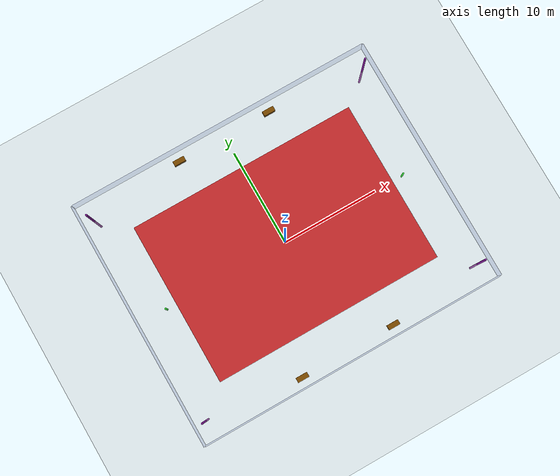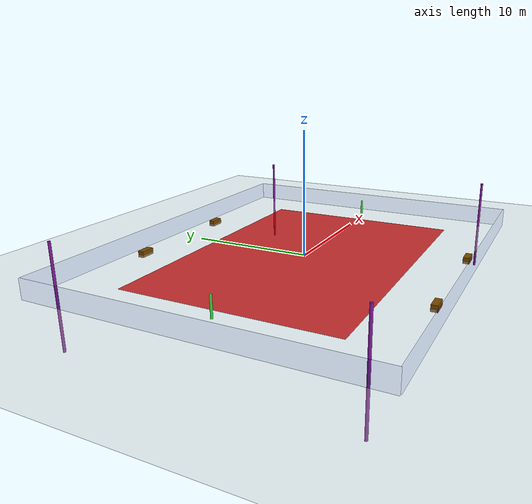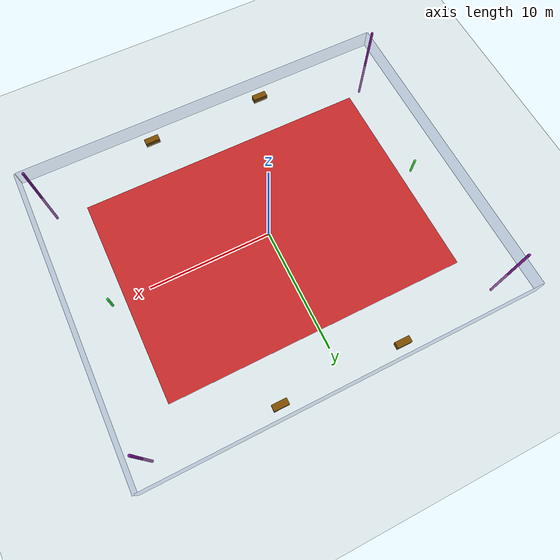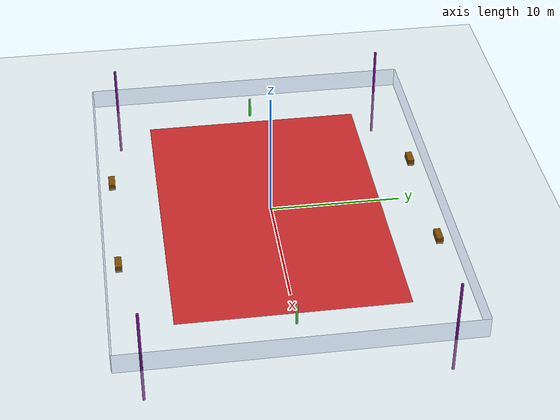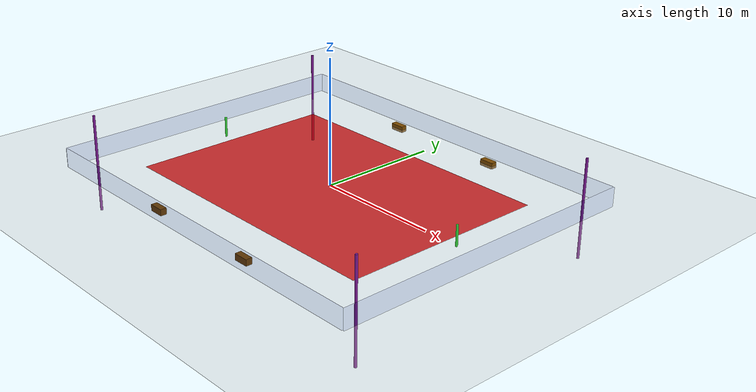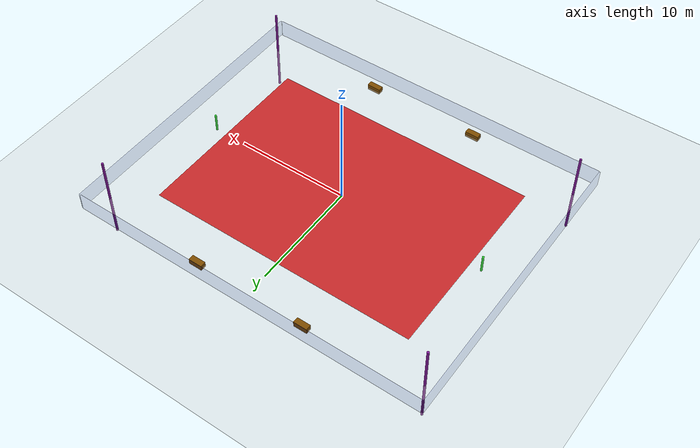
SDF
<sdf version="1.6">
 <world name="default">
  <light name="sun" type="directional">
   <pose>0 0 10 0 -0 0</pose>
   <diffuse>0.8 0.8 0.8 1</diffuse>
   <specular>0.1 0.1 0.1 1</specular>
   <attenuation>
    <range>1000</range>
    <constant>0.9</constant>
    <linear>0.01</linear>
    <quadratic>0.001</quadratic>
   </attenuation>
   <direction>-0.5 0.5 -1</direction>
  </light>
  <model name="ground_plane">
   <static>1</static>
   <link name="link">
    <collision name="collision">
     <geometry><plane><normal>0 0 1</normal><size>100 100</size></plane></geometry>
     <surface><friction><ode><mu>100</mu><mu2>50</mu2></ode></friction></surface>
    </collision>
    <visual name="visual">
     <cast_shadows>0</cast_shadows>
     <geometry><plane><normal>0 0 1</normal><size>100 100</size></plane></geometry>
     <material>
      <script><uri>file://media/materials/scripts/gazebo.material</uri><name>Gazebo/Grey</name></script>
     </material>
    </visual>
   </link>
  </model>
  <gravity>0 0 -9.8</gravity>
  <magnetic_field>6e-06 2.3e-05 -4.2e-05</magnetic_field>
  <atmosphere type="adiabatic"/>
  <physics name="default_physics" default="0" type="ode">
   <max_step_size>0.001</max_step_size>
   <real_time_factor>1</real_time_factor>
   <real_time_update_rate>1000</real_time_update_rate>
  </physics>
  <scene><ambient>0.4 0.4 0.4 1</ambient><background>0.7 0.7 0.7 1</background><shadows>1</shadows></scene>
  <spherical_coordinates>
   <surface_model>EARTH_WGS84</surface_model>
   <latitude_deg>0</latitude_deg>
   <longitude_deg>0</longitude_deg>
   <elevation>0</elevation>
   <heading_deg>0</heading_deg>
  </spherical_coordinates>
  <model name="pole">
   <link name="link">
    <inertial>
     <mass>1</mass>
     <inertia><ixx>0.145833</ixx><ixy>0</ixy><ixz>0</ixz><iyy>0.145833</iyy><iyz>0</iyz><izz>0.125</izz></inertia>
    </inertial>
    <visual name="visual">
     <geometry><cylinder><radius>0.1</radius><length>8</length></cylinder></geometry>
     <material>
      <script><name>Gazebo/Grey</name><uri>file://media/materials/scripts/gazebo.material</uri></script>
      <ambient>0.5 0.1 0.6 1</ambient>
      <diffuse>0.7 0.7 0.7 1</diffuse>
      <specular>0.01 0.01 0.01 1</specular>
      <emissive>0 0 0 1</emissive>
      <shader type="vertex"><normal_map>__default__</normal_map></shader>
     </material>
    </visual>
    <collision name="collision">
     <geometry><cylinder><radius>0.1</radius><length>8</length></cylinder></geometry>
     <surface>
      <friction>
       <ode><mu>1</mu><mu2>1</mu2><fdir1>0 0 0</fdir1><slip1>0</slip1><slip2>0</slip2></ode>
       <torsional>
        <coefficient>1</coefficient>
        <patch_radius>0</patch_radius>
        <surface_radius>0</surface_radius>
        <use_patch_radius>1</use_patch_radius>
        <ode><slip>0</slip></ode>
       </torsional>
      </friction>
      <bounce><restitution_coefficient>0</restitution_coefficient><threshold>1e+06</threshold></bounce>
      <contact>
       <collide_without_contact>0</collide_without_contact>
       <collide_without_contact_bitmask>1</collide_without_contact_bitmask>
       <collide_bitmask>1</collide_bitmask>
       <ode>
        <soft_cfm>0</soft_cfm>
        <soft_erp>0.2</soft_erp>
        <kp>1e+13</kp>
        <kd>1</kd>
        <max_vel>0.01</max_vel>
        <min_depth>0</min_depth>
       </ode>
       <bullet>
        <split_impulse>1</split_impulse>
        <split_impulse_penetration_threshold>-0.01</split_impulse_penetration_threshold>
        <soft_cfm>0</soft_cfm>
        <soft_erp>0.2</soft_erp>
        <kp>1e+13</kp>
        <kd>1</kd>
       </bullet>
      </contact>
     </surface>
    </collision>
   </link>
   <static>1</static>
   <pose>-15 -11 0 0 -0 0</pose>
  </model>
  <model name="pole_0">
   <link name="link">
    <inertial>
     <mass>1</mass>
     <inertia><ixx>0.145833</ixx><ixy>0</ixy><ixz>0</ixz><iyy>0.145833</iyy><iyz>0</iyz><izz>0.125</izz></inertia>
    </inertial>
    <visual name="visual">
     <geometry><cylinder><radius>0.1</radius><length>8</length></cylinder></geometry>
     <material>
      <script><name>Gazebo/Grey</name><uri>file://media/materials/scripts/gazebo.material</uri></script>
      <ambient>0.5 0.1 0.6 1</ambient>
      <diffuse>0.7 0.7 0.7 1</diffuse>
      <specular>0.01 0.01 0.01 1</specular>
      <emissive>0 0 0 1</emissive>
      <shader type="vertex"><normal_map>__default__</normal_map></shader>
     </material>
    </visual>
    <collision name="collision">
     <geometry><cylinder><radius>0.1</radius><length>8</length></cylinder></geometry>
     <surface>
      <friction>
       <ode><mu>1</mu><mu2>1</mu2><fdir1>0 0 0</fdir1><slip1>0</slip1><slip2>0</slip2></ode>
       <torsional>
        <coefficient>1</coefficient>
        <patch_radius>0</patch_radius>
        <surface_radius>0</surface_radius>
        <use_patch_radius>1</use_patch_radius>
        <ode><slip>0</slip></ode>
       </torsional>
      </friction>
      <bounce><restitution_coefficient>0</restitution_coefficient><threshold>1e+06</threshold></bounce>
      <contact>
       <collide_without_contact>0</collide_without_contact>
       <collide_without_contact_bitmask>1</collide_without_contact_bitmask>
       <collide_bitmask>1</collide_bitmask>
       <ode>
        <soft_cfm>0</soft_cfm>
        <soft_erp>0.2</soft_erp>
        <kp>1e+13</kp>
        <kd>1</kd>
        <max_vel>0.01</max_vel>
        <min_depth>0</min_depth>
       </ode>
       <bullet>
        <split_impulse>1</split_impulse>
        <split_impulse_penetration_threshold>-0.01</split_impulse_penetration_threshold>
        <soft_cfm>0</soft_cfm>
        <soft_erp>0.2</soft_erp>
        <kp>1e+13</kp>
        <kd>1</kd>
       </bullet>
      </contact>
     </surface>
    </collision>
   </link>
   <static>1</static>
   <pose>-15 11 0 0 -0 0</pose>
  </model>
  <model name="pole_1">
   <link name="link">
    <inertial>
     <mass>1</mass>
     <inertia><ixx>0.145833</ixx><ixy>0</ixy><ixz>0</ixz><iyy>0.145833</iyy><iyz>0</iyz><izz>0.125</izz></inertia>
    </inertial>
    <visual name="visual">
     <geometry><cylinder><radius>0.1</radius><length>8</length></cylinder></geometry>
     <material>
      <script><name>Gazebo/Grey</name><uri>file://media/materials/scripts/gazebo.material</uri></script>
      <ambient>0.5 0.1 0.6 1</ambient>
      <diffuse>0.7 0.7 0.7 1</diffuse>
      <specular>0.01 0.01 0.01 1</specular>
      <emissive>0 0 0 1</emissive>
      <shader type="vertex"><normal_map>__default__</normal_map></shader>
     </material>
    </visual>
    <collision name="collision">
     <geometry><cylinder><radius>0.1</radius><length>8</length></cylinder></geometry>
     <surface>
      <friction>
       <ode><mu>1</mu><mu2>1</mu2><fdir1>0 0 0</fdir1><slip1>0</slip1><slip2>0</slip2></ode>
       <torsional>
        <coefficient>1</coefficient>
        <patch_radius>0</patch_radius>
        <surface_radius>0</surface_radius>
        <use_patch_radius>1</use_patch_radius>
        <ode><slip>0</slip></ode>
       </torsional>
      </friction>
      <bounce><restitution_coefficient>0</restitution_coefficient><threshold>1e+06</threshold></bounce>
      <contact>
       <collide_without_contact>0</collide_without_contact>
       <collide_without_contact_bitmask>1</collide_without_contact_bitmask>
       <collide_bitmask>1</collide_bitmask>
       <ode>
        <soft_cfm>0</soft_cfm>
        <soft_erp>0.2</soft_erp>
        <kp>1e+13</kp>
        <kd>1</kd>
        <max_vel>0.01</max_vel>
        <min_depth>0</min_depth>
       </ode>
       <bullet>
        <split_impulse>1</split_impulse>
        <split_impulse_penetration_threshold>-0.01</split_impulse_penetration_threshold>
        <soft_cfm>0</soft_cfm>
        <soft_erp>0.2</soft_erp>
        <kp>1e+13</kp>
        <kd>1</kd>
       </bullet>
      </contact>
     </surface>
    </collision>
   </link>
   <static>1</static>
   <pose>15 -11 0 0 -0 0</pose>
  </model>
  <model name="pole_2">
   <link name="link">
    <inertial>
     <mass>1</mass>
     <inertia><ixx>0.145833</ixx><ixy>0</ixy><ixz>0</ixz><iyy>0.145833</iyy><iyz>0</iyz><izz>0.125</izz></inertia>
    </inertial>
    <visual name="visual">
     <geometry><cylinder><radius>0.1</radius><length>8</length></cylinder></geometry>
     <material>
      <script><name>Gazebo/Grey</name><uri>file://media/materials/scripts/gazebo.material</uri></script>
      <ambient>0.5 0.1 0.6 1</ambient>
      <diffuse>0.7 0.7 0.7 1</diffuse>
      <specular>0.01 0.01 0.01 1</specular>
      <emissive>0 0 0 1</emissive>
      <shader type="vertex"><normal_map>__default__</normal_map></shader>
     </material>
    </visual>
    <collision name="collision">
     <geometry><cylinder><radius>0.1</radius><length>8</length></cylinder></geometry>
     <surface>
      <friction>
       <ode><mu>1</mu><mu2>1</mu2><fdir1>0 0 0</fdir1><slip1>0</slip1><slip2>0</slip2></ode>
       <torsional>
        <coefficient>1</coefficient>
        <patch_radius>0</patch_radius>
        <surface_radius>0</surface_radius>
        <use_patch_radius>1</use_patch_radius>
        <ode><slip>0</slip></ode>
       </torsional>
      </friction>
      <bounce><restitution_coefficient>0</restitution_coefficient><threshold>1e+06</threshold></bounce>
      <contact>
       <collide_without_contact>0</collide_without_contact>
       <collide_without_contact_bitmask>1</collide_without_contact_bitmask>
       <collide_bitmask>1</collide_bitmask>
       <ode>
        <soft_cfm>0</soft_cfm>
        <soft_erp>0.2</soft_erp>
        <kp>1e+13</kp>
        <kd>1</kd>
        <max_vel>0.01</max_vel>
        <min_depth>0</min_depth>
       </ode>
       <bullet>
        <split_impulse>1</split_impulse>
        <split_impulse_penetration_threshold>-0.01</split_impulse_penetration_threshold>
        <soft_cfm>0</soft_cfm>
        <soft_erp>0.2</soft_erp>
        <kp>1e+13</kp>
        <kd>1</kd>
       </bullet>
      </contact>
     </surface>
    </collision>
   </link>
   <static>1</static>
   <pose>15 11 0 0 -0 0</pose>
  </model>
  <model name="bas_stand">
   <link name="link">
    <inertial>
     <mass>1</mass>
     <inertia><ixx>0.145833</ixx><ixy>0</ixy><ixz>0</ixz><iyy>0.145833</iyy><iyz>0</iyz><izz>0.125</izz></inertia>
    </inertial>
    <visual name="visual">
     <geometry><cylinder><radius>0.09</radius><length>3.2</length></cylinder></geometry>
     <material>
      <script><name>Gazebo/Grey</name><uri>file://media/materials/scripts/gazebo.material</uri></script>
      <ambient>0 0.8 0 0.8</ambient>
      <diffuse>0.7 0.7 0.7 1</diffuse>
      <specular>0.01 0.01 0.01 1</specular>
      <emissive>0 0 0 1</emissive>
      <shader type="vertex"><normal_map>__default__</normal_map></shader>
     </material>
    </visual>
    <collision name="collision">
     <geometry><cylinder><radius>0.09</radius><length>3.2</length></cylinder></geometry>
     <surface>
      <friction>
       <ode><mu>1</mu><mu2>1</mu2><fdir1>0 0 0</fdir1><slip1>0</slip1><slip2>0</slip2></ode>
       <torsional>
        <coefficient>1</coefficient>
        <patch_radius>0</patch_radius>
        <surface_radius>0</surface_radius>
        <use_patch_radius>1</use_patch_radius>
        <ode><slip>0</slip></ode>
       </torsional>
      </friction>
      <bounce><restitution_coefficient>0</restitution_coefficient><threshold>1e+06</threshold></bounce>
      <contact>
       <collide_without_contact>0</collide_without_contact>
       <collide_without_contact_bitmask>1</collide_without_contact_bitmask>
       <collide_bitmask>1</collide_bitmask>
       <ode>
        <soft_cfm>0</soft_cfm>
        <soft_erp>0.2</soft_erp>
        <kp>1e+13</kp>
        <kd>1</kd>
        <max_vel>0.01</max_vel>
        <min_depth>0</min_depth>
       </ode>
       <bullet>
        <split_impulse>1</split_impulse>
        <split_impulse_penetration_threshold>-0.01</split_impulse_penetration_threshold>
        <soft_cfm>0</soft_cfm>
        <soft_erp>0.2</soft_erp>
        <kp>1e+13</kp>
        <kd>1</kd>
       </bullet>
      </contact>
     </surface>
    </collision>
   </link>
   <static>1</static>
   <pose>-13 0 0 0 -0 0</pose>
  </model>
  <model name="bas_stand_0">
   <link name="link">
    <inertial>
     <mass>1</mass>
     <inertia><ixx>0.145833</ixx><ixy>0</ixy><ixz>0</ixz><iyy>0.145833</iyy><iyz>0</iyz><izz>0.125</izz></inertia>
    </inertial>
    <visual name="visual">
     <geometry><cylinder><radius>0.09</radius><length>3.2</length></cylinder></geometry>
     <material>
      <script><name>Gazebo/Grey</name><uri>file://media/materials/scripts/gazebo.material</uri></script>
      <ambient>0 0.8 0 0.8</ambient>
      <diffuse>0.7 0.7 0.7 1</diffuse>
      <specular>0.01 0.01 0.01 1</specular>
      <emissive>0 0 0 1</emissive>
      <shader type="vertex"><normal_map>__default__</normal_map></shader>
     </material>
    </visual>
    <collision name="collision">
     <geometry><cylinder><radius>0.09</radius><length>3.2</length></cylinder></geometry>
     <surface>
      <friction>
       <ode><mu>1</mu><mu2>1</mu2><fdir1>0 0 0</fdir1><slip1>0</slip1><slip2>0</slip2></ode>
       <torsional>
        <coefficient>1</coefficient>
        <patch_radius>0</patch_radius>
        <surface_radius>0</surface_radius>
        <use_patch_radius>1</use_patch_radius>
        <ode><slip>0</slip></ode>
       </torsional>
      </friction>
      <bounce><restitution_coefficient>0</restitution_coefficient><threshold>1e+06</threshold></bounce>
      <contact>
       <collide_without_contact>0</collide_without_contact>
       <collide_without_contact_bitmask>1</collide_without_contact_bitmask>
       <collide_bitmask>1</collide_bitmask>
       <ode>
        <soft_cfm>0</soft_cfm>
        <soft_erp>0.2</soft_erp>
        <kp>1e+13</kp>
        <kd>1</kd>
        <max_vel>0.01</max_vel>
        <min_depth>0</min_depth>
       </ode>
       <bullet>
        <split_impulse>1</split_impulse>
        <split_impulse_penetration_threshold>-0.01</split_impulse_penetration_threshold>
        <soft_cfm>0</soft_cfm>
        <soft_erp>0.2</soft_erp>
        <kp>1e+13</kp>
        <kd>1</kd>
       </bullet>
      </contact>
     </surface>
    </collision>
   </link>
   <static>1</static>
   <pose>13 0 0 0 -0 0</pose>
  </model>
  <model name="chair_4">
   <link name="link">
    <inertial>
     <mass>1</mass>
     <inertia>
      <ixx>0.166667</ixx>
      <ixy>0</ixy>
      <ixz>0</ixz>
      <iyy>0.166667</iyy>
      <iyz>0</iyz>
      <izz>0.166667</izz>
     </inertia>
    </inertial>
    <visual name="visual">
     <geometry><box><size>1.2 0.5 0.5</size></box></geometry>
     <material>
      <script><name>Gazebo/Grey</name><uri>file://media/materials/scripts/gazebo.material</uri></script>
      <ambient>0.5 0.3 0 1</ambient>
      <diffuse>0.7 0.7 0.7 1</diffuse>
      <specular>0.01 0.01 0.01 1</specular>
      <emissive>0 0 0 1</emissive>
      <shader type="vertex"><normal_map>__default__</normal_map></shader>
     </material>
    </visual>
    <collision name="collision">
     <geometry><box><size>1.2 0.5 0.5</size></box></geometry>
     <surface>
      <friction>
       <ode><mu>1</mu><mu2>1</mu2><fdir1>0 0 0</fdir1><slip1>0</slip1><slip2>0</slip2></ode>
       <torsional>
        <coefficient>1</coefficient>
        <patch_radius>0</patch_radius>
        <surface_radius>0</surface_radius>
        <use_patch_radius>1</use_patch_radius>
        <ode><slip>0</slip></ode>
       </torsional>
      </friction>
      <bounce><restitution_coefficient>0</restitution_coefficient><threshold>1e+06</threshold></bounce>
      <contact>
       <collide_without_contact>0</collide_without_contact>
       <collide_without_contact_bitmask>1</collide_without_contact_bitmask>
       <collide_bitmask>1</collide_bitmask>
       <ode>
        <soft_cfm>0</soft_cfm>
        <soft_erp>0.2</soft_erp>
        <kp>1e+13</kp>
        <kd>1</kd>
        <max_vel>0.01</max_vel>
        <min_depth>0</min_depth>
       </ode>
       <bullet>
        <split_impulse>1</split_impulse>
        <split_impulse_penetration_threshold>-0.01</split_impulse_penetration_threshold>
        <soft_cfm>0</soft_cfm>
        <soft_erp>0.2</soft_erp>
        <kp>1e+13</kp>
        <kd>1</kd>
       </bullet>
      </contact>
     </surface>
    </collision>
   </link>
   <static>1</static>
   <pose>-5 -12 0 0 -0 0</pose>
  </model>
  <model name="chair_5">
   <link name="link">
    <inertial>
     <mass>1</mass>
     <inertia>
      <ixx>0.166667</ixx>
      <ixy>0</ixy>
      <ixz>0</ixz>
      <iyy>0.166667</iyy>
      <iyz>0</iyz>
      <izz>0.166667</izz>
     </inertia>
    </inertial>
    <visual name="visual">
     <geometry><box><size>1.2 0.5 0.5</size></box></geometry>
     <material>
      <script><name>Gazebo/Grey</name><uri>file://media/materials/scripts/gazebo.material</uri></script>
      <ambient>0.5 0.3 0 1</ambient>
      <diffuse>0.7 0.7 0.7 1</diffuse>
      <specular>0.01 0.01 0.01 1</specular>
      <emissive>0 0 0 1</emissive>
      <shader type="vertex"><normal_map>__default__</normal_map></shader>
     </material>
    </visual>
    <collision name="collision">
     <geometry><box><size>1.2 0.5 0.5</size></box></geometry>
     <surface>
      <friction>
       <ode><mu>1</mu><mu2>1</mu2><fdir1>0 0 0</fdir1><slip1>0</slip1><slip2>0</slip2></ode>
       <torsional>
        <coefficient>1</coefficient>
        <patch_radius>0</patch_radius>
        <surface_radius>0</surface_radius>
        <use_patch_radius>1</use_patch_radius>
        <ode><slip>0</slip></ode>
       </torsional>
      </friction>
      <bounce><restitution_coefficient>0</restitution_coefficient><threshold>1e+06</threshold></bounce>
      <contact>
       <collide_without_contact>0</collide_without_contact>
       <collide_without_contact_bitmask>1</collide_without_contact_bitmask>
       <collide_bitmask>1</collide_bitmask>
       <ode>
        <soft_cfm>0</soft_cfm>
        <soft_erp>0.2</soft_erp>
        <kp>1e+13</kp>
        <kd>1</kd>
        <max_vel>0.01</max_vel>
        <min_depth>0</min_depth>
       </ode>
       <bullet>
        <split_impulse>1</split_impulse>
        <split_impulse_penetration_threshold>-0.01</split_impulse_penetration_threshold>
        <soft_cfm>0</soft_cfm>
        <soft_erp>0.2</soft_erp>
        <kp>1e+13</kp>
        <kd>1</kd>
       </bullet>
      </contact>
     </surface>
    </collision>
   </link>
   <static>1</static>
   <pose>5 -12 0 0 -0 0</pose>
  </model>
  <model name="chair_6">
   <link name="link">
    <inertial>
     <mass>1</mass>
     <inertia>
      <ixx>0.166667</ixx>
      <ixy>0</ixy>
      <ixz>0</ixz>
      <iyy>0.166667</iyy>
      <iyz>0</iyz>
      <izz>0.166667</izz>
     </inertia>
    </inertial>
    <visual name="visual">
     <geometry><box><size>1.2 0.5 0.5</size></box></geometry>
     <material>
      <script><name>Gazebo/Grey</name><uri>file://media/materials/scripts/gazebo.material</uri></script>
      <ambient>0.5 0.3 0 1</ambient>
      <diffuse>0.7 0.7 0.7 1</diffuse>
      <specular>0.01 0.01 0.01 1</specular>
      <emissive>0 0 0 1</emissive>
      <shader type="vertex"><normal_map>__default__</normal_map></shader>
     </material>
    </visual>
    <collision name="collision">
     <geometry><box><size>1.2 0.5 0.5</size></box></geometry>
     <surface>
      <friction>
       <ode><mu>1</mu><mu2>1</mu2><fdir1>0 0 0</fdir1><slip1>0</slip1><slip2>0</slip2></ode>
       <torsional>
        <coefficient>1</coefficient>
        <patch_radius>0</patch_radius>
        <surface_radius>0</surface_radius>
        <use_patch_radius>1</use_patch_radius>
        <ode><slip>0</slip></ode>
       </torsional>
      </friction>
      <bounce><restitution_coefficient>0</restitution_coefficient><threshold>1e+06</threshold></bounce>
      <contact>
       <collide_without_contact>0</collide_without_contact>
       <collide_without_contact_bitmask>1</collide_without_contact_bitmask>
       <collide_bitmask>1</collide_bitmask>
       <ode>
        <soft_cfm>0</soft_cfm>
        <soft_erp>0.2</soft_erp>
        <kp>1e+13</kp>
        <kd>1</kd>
        <max_vel>0.01</max_vel>
        <min_depth>0</min_depth>
       </ode>
       <bullet>
        <split_impulse>1</split_impulse>
        <split_impulse_penetration_threshold>-0.01</split_impulse_penetration_threshold>
        <soft_cfm>0</soft_cfm>
        <soft_erp>0.2</soft_erp>
        <kp>1e+13</kp>
        <kd>1</kd>
       </bullet>
      </contact>
     </surface>
    </collision>
   </link>
   <static>1</static>
   <pose>-5 12 0 0 -0 0</pose>
  </model>
  <model name="chair_7">
   <link name="link">
    <inertial>
     <mass>1</mass>
     <inertia>
      <ixx>0.166667</ixx>
      <ixy>0</ixy>
      <ixz>0</ixz>
      <iyy>0.166667</iyy>
      <iyz>0</iyz>
      <izz>0.166667</izz>
     </inertia>
    </inertial>
    <visual name="visual">
     <geometry><box><size>1.2 0.5 0.5</size></box></geometry>
     <material>
      <script><name>Gazebo/Grey</name><uri>file://media/materials/scripts/gazebo.material</uri></script>
      <ambient>0.5 0.3 0 1</ambient>
      <diffuse>0.7 0.7 0.7 1</diffuse>
      <specular>0.01 0.01 0.01 1</specular>
      <emissive>0 0 0 1</emissive>
      <shader type="vertex"><normal_map>__default__</normal_map></shader>
     </material>
    </visual>
    <collision name="collision">
     <geometry><box><size>1.2 0.5 0.5</size></box></geometry>
     <surface>
      <friction>
       <ode><mu>1</mu><mu2>1</mu2><fdir1>0 0 0</fdir1><slip1>0</slip1><slip2>0</slip2></ode>
       <torsional>
        <coefficient>1</coefficient>
        <patch_radius>0</patch_radius>
        <surface_radius>0</surface_radius>
        <use_patch_radius>1</use_patch_radius>
        <ode><slip>0</slip></ode>
       </torsional>
      </friction>
      <bounce><restitution_coefficient>0</restitution_coefficient><threshold>1e+06</threshold></bounce>
      <contact>
       <collide_without_contact>0</collide_without_contact>
       <collide_without_contact_bitmask>1</collide_without_contact_bitmask>
       <collide_bitmask>1</collide_bitmask>
       <ode>
        <soft_cfm>0</soft_cfm>
        <soft_erp>0.2</soft_erp>
        <kp>1e+13</kp>
        <kd>1</kd>
        <max_vel>0.01</max_vel>
        <min_depth>0</min_depth>
       </ode>
       <bullet>
        <split_impulse>1</split_impulse>
        <split_impulse_penetration_threshold>-0.01</split_impulse_penetration_threshold>
        <soft_cfm>0</soft_cfm>
        <soft_erp>0.2</soft_erp>
        <kp>1e+13</kp>
        <kd>1</kd>
       </bullet>
      </contact>
     </surface>
    </collision>
   </link>
   <static>1</static>
   <pose>5 12 0 0 -0 0</pose>
  </model>
  <model name="wall1">
   <link name="link">
    <inertial>
     <mass>1</mass>
     <inertia>
      <ixx>0.166667</ixx>
      <ixy>0</ixy>
      <ixz>0</ixz>
      <iyy>0.166667</iyy>
      <iyz>0</iyz>
      <izz>0.166667</izz>
     </inertia>
    </inertial>
    <visual name="visual">
     <geometry><box><size>32 0.1 3</size></box></geometry>
     <material>
      <script><name>Gazebo/Grey</name><uri>file://media/materials/scripts/gazebo.material</uri></script>
      <ambient>0 0 0.3 0.2</ambient>
      <diffuse>0.7 0.7 0.7 0.2</diffuse>
      <specular>0.01 0.01 0.01 0.2</specular>
      <emissive>0 0 0 0.2</emissive>
      <shader type="vertex"><normal_map>__default__</normal_map></shader>
     </material>
    </visual>
    <collision name="collision">
     <geometry><box><size>32 0.1 3</size></box></geometry>
     <surface>
      <friction>
       <ode><mu>1</mu><mu2>1</mu2><fdir1>0 0 0</fdir1><slip1>0</slip1><slip2>0</slip2></ode>
       <torsional>
        <coefficient>1</coefficient>
        <patch_radius>0</patch_radius>
        <surface_radius>0</surface_radius>
        <use_patch_radius>1</use_patch_radius>
        <ode><slip>0</slip></ode>
       </torsional>
      </friction>
      <bounce><restitution_coefficient>0</restitution_coefficient><threshold>1e+06</threshold></bounce>
      <contact>
       <collide_without_contact>0</collide_without_contact>
       <collide_without_contact_bitmask>1</collide_without_contact_bitmask>
       <collide_bitmask>1</collide_bitmask>
       <ode>
        <soft_cfm>0</soft_cfm>
        <soft_erp>0.2</soft_erp>
        <kp>1e+13</kp>
        <kd>1</kd>
        <max_vel>0.01</max_vel>
        <min_depth>0</min_depth>
       </ode>
       <bullet>
        <split_impulse>1</split_impulse>
        <split_impulse_penetration_threshold>-0.01</split_impulse_penetration_threshold>
        <soft_cfm>0</soft_cfm>
        <soft_erp>0.2</soft_erp>
        <kp>1e+13</kp>
        <kd>1</kd>
       </bullet>
      </contact>
     </surface>
    </collision>
   </link>
   <static>1</static>
   <pose>0 -13 0 0 -0 0</pose>
  </model>
  <model name="wall1_0">
   <link name="link">
    <inertial>
     <mass>1</mass>
     <inertia>
      <ixx>0.166667</ixx>
      <ixy>0</ixy>
      <ixz>0</ixz>
      <iyy>0.166667</iyy>
      <iyz>0</iyz>
      <izz>0.166667</izz>
     </inertia>
    </inertial>
    <visual name="visual">
     <geometry><box><size>32 0.1 3</size></box></geometry>
     <material>
      <script><name>Gazebo/Grey</name><uri>file://media/materials/scripts/gazebo.material</uri></script>
      <ambient>0 0 0.3 0.2</ambient>
      <diffuse>0.7 0.7 0.7 0.2</diffuse>
      <specular>0.01 0.01 0.01 0.2</specular>
      <emissive>0 0 0 0.2</emissive>
      <shader type="vertex"><normal_map>__default__</normal_map></shader>
     </material>
    </visual>
    <collision name="collision">
     <geometry><box><size>32 0.1 3</size></box></geometry>
     <surface>
      <friction>
       <ode><mu>1</mu><mu2>1</mu2><fdir1>0 0 0</fdir1><slip1>0</slip1><slip2>0</slip2></ode>
       <torsional>
        <coefficient>1</coefficient>
        <patch_radius>0</patch_radius>
        <surface_radius>0</surface_radius>
        <use_patch_radius>1</use_patch_radius>
        <ode><slip>0</slip></ode>
       </torsional>
      </friction>
      <bounce><restitution_coefficient>0</restitution_coefficient><threshold>1e+06</threshold></bounce>
      <contact>
       <collide_without_contact>0</collide_without_contact>
       <collide_without_contact_bitmask>1</collide_without_contact_bitmask>
       <collide_bitmask>1</collide_bitmask>
       <ode>
        <soft_cfm>0</soft_cfm>
        <soft_erp>0.2</soft_erp>
        <kp>1e+13</kp>
        <kd>1</kd>
        <max_vel>0.01</max_vel>
        <min_depth>0</min_depth>
       </ode>
       <bullet>
        <split_impulse>1</split_impulse>
        <split_impulse_penetration_threshold>-0.01</split_impulse_penetration_threshold>
        <soft_cfm>0</soft_cfm>
        <soft_erp>0.2</soft_erp>
        <kp>1e+13</kp>
        <kd>1</kd>
       </bullet>
      </contact>
     </surface>
    </collision>
   </link>
   <static>1</static>
   <pose>0 13 0 0 -0 0</pose>
  </model>
  <model name="wall2_3">
   <link name="link">
    <inertial>
     <mass>1</mass>
     <inertia>
      <ixx>0.166667</ixx>
      <ixy>0</ixy>
      <ixz>0</ixz>
      <iyy>0.166667</iyy>
      <iyz>0</iyz>
      <izz>0.166667</izz>
     </inertia>
    </inertial>
    <visual name="visual">
     <geometry><box><size>0.1 26 3</size></box></geometry>
     <material>
      <script><name>Gazebo/Grey</name><uri>file://media/materials/scripts/gazebo.material</uri></script>
      <ambient>0 0 0.3 0.2</ambient>
      <diffuse>0.7 0.7 0.7 1</diffuse>
      <specular>0.01 0.01 0.01 1</specular>
      <emissive>0 0 0 1</emissive>
      <shader type="vertex"><normal_map>__default__</normal_map></shader>
     </material>
    </visual>
    <collision name="collision">
     <geometry><box><size>0.1 26 3</size></box></geometry>
     <surface>
      <friction>
       <ode><mu>1</mu><mu2>1</mu2><fdir1>0 0 0</fdir1><slip1>0</slip1><slip2>0</slip2></ode>
       <torsional>
        <coefficient>1</coefficient>
        <patch_radius>0</patch_radius>
        <surface_radius>0</surface_radius>
        <use_patch_radius>1</use_patch_radius>
        <ode><slip>0</slip></ode>
       </torsional>
      </friction>
      <bounce><restitution_coefficient>0</restitution_coefficient><threshold>1e+06</threshold></bounce>
      <contact>
       <collide_without_contact>0</collide_without_contact>
       <collide_without_contact_bitmask>1</collide_without_contact_bitmask>
       <collide_bitmask>1</collide_bitmask>
       <ode>
        <soft_cfm>0</soft_cfm>
        <soft_erp>0.2</soft_erp>
        <kp>1e+13</kp>
        <kd>1</kd>
        <max_vel>0.01</max_vel>
        <min_depth>0</min_depth>
       </ode>
       <bullet>
        <split_impulse>1</split_impulse>
        <split_impulse_penetration_threshold>-0.01</split_impulse_penetration_threshold>
        <soft_cfm>0</soft_cfm>
        <soft_erp>0.2</soft_erp>
        <kp>1e+13</kp>
        <kd>1</kd>
       </bullet>
      </contact>
     </surface>
    </collision>
   </link>
   <static>1</static>
   <pose>-16.1 0 0 0 -0 0</pose>
  </model>
  <model name="wall2_4">
   <link name="link">
    <inertial>
     <mass>1</mass>
     <inertia>
      <ixx>0.166667</ixx>
      <ixy>0</ixy>
      <ixz>0</ixz>
      <iyy>0.166667</iyy>
      <iyz>0</iyz>
      <izz>0.166667</izz>
     </inertia>
    </inertial>
    <visual name="visual">
     <geometry><box><size>0.1 26 3</size></box></geometry>
     <material>
      <script><name>Gazebo/Grey</name><uri>file://media/materials/scripts/gazebo.material</uri></script>
      <ambient>0 0 0.3 0.2</ambient>
      <diffuse>0.7 0.7 0.7 1</diffuse>
      <specular>0.01 0.01 0.01 1</specular>
      <emissive>0 0 0 1</emissive>
      <shader type="vertex"><normal_map>__default__</normal_map></shader>
     </material>
    </visual>
    <collision name="collision">
     <geometry><box><size>0.1 26 3</size></box></geometry>
     <surface>
      <friction>
       <ode><mu>1</mu><mu2>1</mu2><fdir1>0 0 0</fdir1><slip1>0</slip1><slip2>0</slip2></ode>
       <torsional>
        <coefficient>1</coefficient>
        <patch_radius>0</patch_radius>
        <surface_radius>0</surface_radius>
        <use_patch_radius>1</use_patch_radius>
        <ode><slip>0</slip></ode>
       </torsional>
      </friction>
      <bounce><restitution_coefficient>0</restitution_coefficient><threshold>1e+06</threshold></bounce>
      <contact>
       <collide_without_contact>0</collide_without_contact>
       <collide_without_contact_bitmask>1</collide_without_contact_bitmask>
       <collide_bitmask>1</collide_bitmask>
       <ode>
        <soft_cfm>0</soft_cfm>
        <soft_erp>0.2</soft_erp>
        <kp>1e+13</kp>
        <kd>1</kd>
        <max_vel>0.01</max_vel>
        <min_depth>0</min_depth>
       </ode>
       <bullet>
        <split_impulse>1</split_impulse>
        <split_impulse_penetration_threshold>-0.01</split_impulse_penetration_threshold>
        <soft_cfm>0</soft_cfm>
        <soft_erp>0.2</soft_erp>
        <kp>1e+13</kp>
        <kd>1</kd>
       </bullet>
      </contact>
     </surface>
    </collision>
   </link>
   <static>1</static>
   <pose>16.1 0 0 0 -0 0</pose>
  </model>
  <model name="bas_background">
   <link name="link">
    <inertial>
     <mass>1</mass>
     <inertia>
      <ixx>0.166667</ixx>
      <ixy>0</ixy>
      <ixz>0</ixz>
      <iyy>0.166667</iyy>
      <iyz>0</iyz>
      <izz>0.166667</izz>
     </inertia>
    </inertial>
    <visual name="visual">
     <geometry><box><size>24 17 0.01</size></box></geometry>
     <material>
      <script><name>Gazebo/Grey</name><uri>file://media/materials/scripts/gazebo.material</uri></script>
      <ambient>0.8 0 0 0.8</ambient>
      <diffuse>0.7 0.7 0.7 1</diffuse>
      <specular>0.01 0.01 0.01 1</specular>
      <emissive>0 0 0 1</emissive>
      <shader type="vertex"><normal_map>__default__</normal_map></shader>
     </material>
    </visual>
    <collision name="collision">
     <geometry><box><size>0.0001 0.0001 0.0001</size></box></geometry>
     <surface>
      <friction>
       <ode><mu>1</mu><mu2>1</mu2><fdir1>0 0 0</fdir1><slip1>0</slip1><slip2>0</slip2></ode>
       <torsional>
        <coefficient>1</coefficient>
        <patch_radius>0</patch_radius>
        <surface_radius>0</surface_radius>
        <use_patch_radius>1</use_patch_radius>
        <ode><slip>0</slip></ode>
       </torsional>
      </friction>
      <bounce><restitution_coefficient>0</restitution_coefficient><threshold>1e+06</threshold></bounce>
      <contact>
       <collide_without_contact>0</collide_without_contact>
       <collide_without_contact_bitmask>1</collide_without_contact_bitmask>
       <collide_bitmask>1</collide_bitmask>
       <ode>
        <soft_cfm>0</soft_cfm>
        <soft_erp>0.2</soft_erp>
        <kp>1e+13</kp>
        <kd>1</kd>
        <max_vel>0.01</max_vel>
        <min_depth>0</min_depth>
       </ode>
       <bullet>
        <split_impulse>1</split_impulse>
        <split_impulse_penetration_threshold>-0.01</split_impulse_penetration_threshold>
        <soft_cfm>0</soft_cfm>
        <soft_erp>0.2</soft_erp>
        <kp>1e+13</kp>
        <kd>1</kd>
       </bullet>
      </contact>
     </surface>
    </collision>
   </link>
   <static>1</static>
  </model>
 </world>
</sdf>
